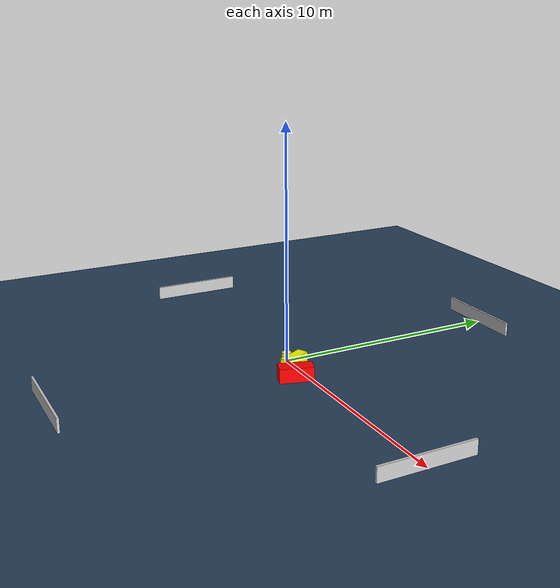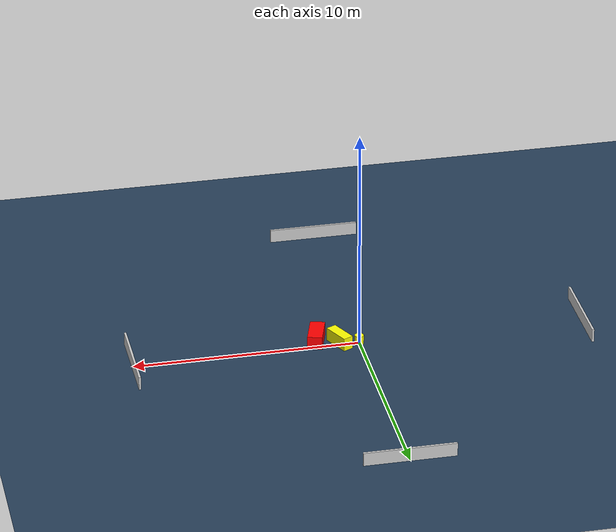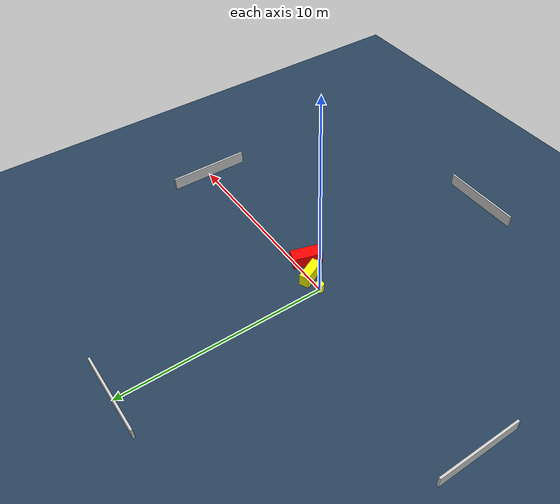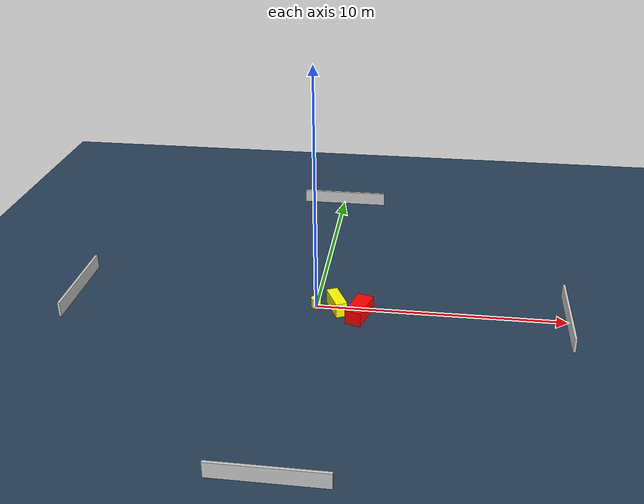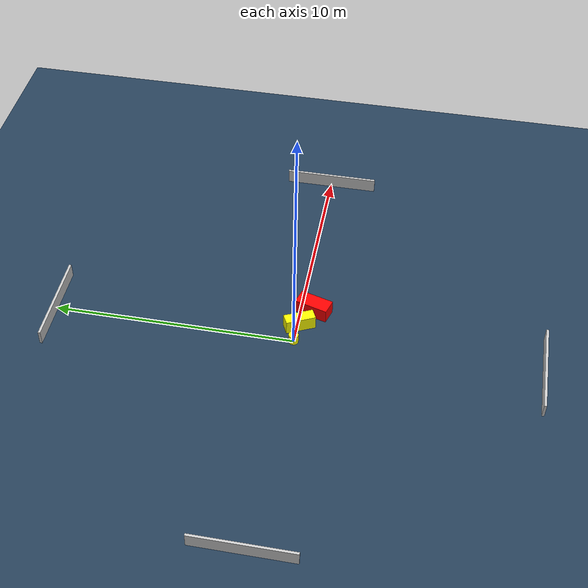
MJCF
<?xml version="1.0" ?>
<mujoco model="generated_environment">
  <option timestep="0.01" integrator="RK4" cone="elliptic"/>
  <default>
    <geom density="1"/>
  </default>
  <asset>
    <texture builtin="gradient" height="3072" name="skybox" rgb1="0.3 0.5 0.7" rgb2="0 0 0" type="skybox" width="512"/>
    <texture builtin="checker" height="300" name="groundplane" rgb1="0.2 0.3 0.4" rgb2="0.1 0.2 0.3" type="2d" width="300"/>
    <material name="groundplane" reflectance="0.2" texrepeat="5 5" texture="groundplane"/>
  </asset>
  <worldbody>
    <light dir="0 0 -1" directional="true" pos="0 0 1.5"/>
    <geom condim="3" friction="0.5 0.005 0.001" material="groundplane" name="floor" pos="0 0 0" size="0 0 0.05" type="plane"/>
    <body name="walls">
      <geom name="wall_1" condim="4" pos="-10.0 0.0 0.3" rgba="0.800000011920929 0.800000011920929 0.800000011920929 1.0" size="0.05 2.0 0.3" type="box"/>
      <geom name="wall_2" condim="4" pos="10.0 0.0 0.3" rgba="0.800000011920929 0.800000011920929 0.800000011920929 1.0" size="0.05 2.0 0.3" type="box"/>
      <geom name="wall_3" condim="4" pos="0.0 -10.0 0.3" rgba="0.800000011920929 0.800000011920929 0.800000011920929 1.0" size="2.0 0.05 0.3" type="box"/>
      <geom name="wall_4" condim="4" pos="0.0 10.0 0.3" rgba="0.800000011920929 0.800000011920929 0.800000011920929 1.0" size="2.0 0.05 0.3" type="box"/>
    </body>
    <body name="robot">
      <joint name="joint_x" type="slide" pos="0 0 0" axis="1 0 0"/>
      <joint name="joint_y" type="slide" pos="0 0 0" axis="0 1 0"/>
      <geom name="robot" type="cylinder" pos="0.0 0.0 0.2" size="0.2 0.2 0.0" mass="5.0" friction="1.0 0.005 0.0001" condim="4" rgba="1.0 1.0 0.0 1.0"/>
    </body>
    <body name="obstacle_1_movable">
      <geom name="obstacle_1_movable" condim="4" pos="0.8541000544313944 -0.09424713681307637 0.3" euler="0 0 295.80615257066097" friction="0.0 0.005 0.001" rgba="1.0 1.0 0.0 1.0" size="0.6204600774769409 0.23331344084303746 0.3" type="box" mass="0.1"/>
      <joint type="free"/>
    </body>
    <body name="obstacle_2_static">
      <geom name="obstacle_2_static" condim="4" pos="1.8075179090099374 -0.5247918797111457 0.3" euler="0 0 253.26490040424736" friction="0.0 0.005 0.001" rgba="1.0 0.0 0.0 1.0" size="0.7015918518970579 0.32817919913015753 0.3" type="box"/>
    </body>
  </worldbody>
  <actuator>
    <motor name="actuator_x" joint="joint_x" gear="1" ctrlrange="-1 1"/>
    <motor name="actuator_y" joint="joint_y" gear="1" ctrlrange="-1 1"/>
  </actuator>
</mujoco>
